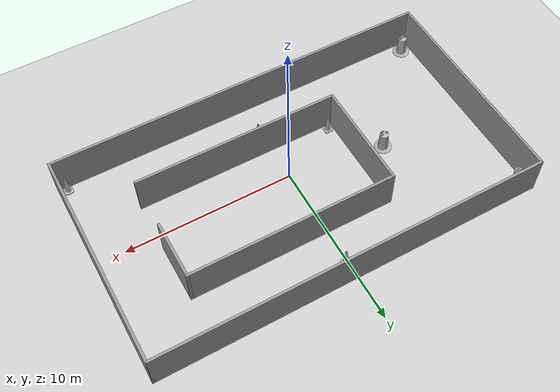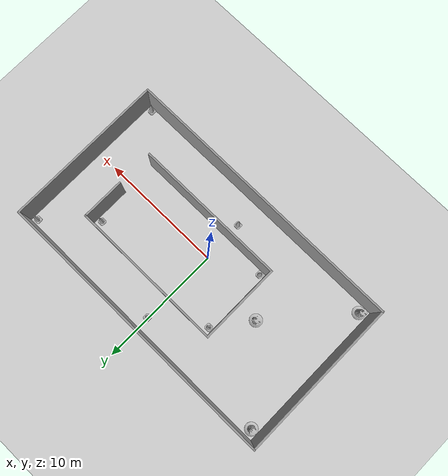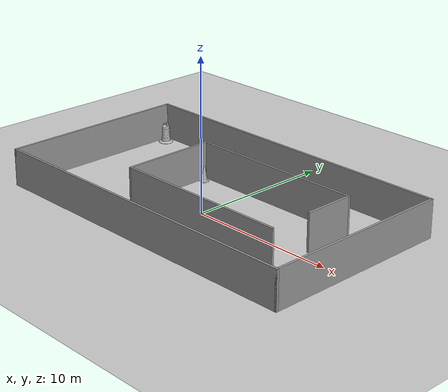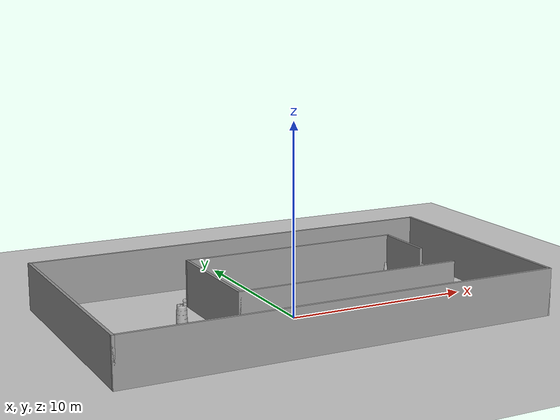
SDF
<sdf version="1.7">
 <world name="default">
  <light name="sun" type="directional">
   <pose>0 0 10 0 -0 0</pose>
   <diffuse>0.8 0.8 0.8 1</diffuse>
   <specular>0.2 0.2 0.2 1</specular>
   <attenuation>
    <range>1000</range>
    <constant>0.9</constant>
    <linear>0.01</linear>
    <quadratic>0.001</quadratic>
   </attenuation>
   <direction>-0.5 0.1 -0.9</direction>
   <spot><inner_angle>0</inner_angle><outer_angle>0</outer_angle><falloff>0</falloff></spot>
  </light>
  <model name="ground_plane">
   <static>1</static>
   <link name="link">
    <collision name="collision">
     <geometry><plane><normal>0 0 1</normal><size>100 100</size></plane></geometry>
     <surface><friction><ode><mu>100</mu><mu2>50</mu2></ode></friction></surface>
    </collision>
    <visual name="visual">
     <cast_shadows>0</cast_shadows>
     <geometry><plane><normal>0 0 1</normal><size>100 100</size></plane></geometry>
     <material>
      <script><uri>file://media/materials/scripts/gazebo.material</uri><name>Gazebo/Grey</name></script>
     </material>
    </visual>
   </link>
  </model>
  <gravity>0 0 -9.8</gravity>
  <magnetic_field>6e-06 2.3e-05 -4.2e-05</magnetic_field>
  <atmosphere type="adiabatic"/>
  <physics type="ode">
   <max_step_size>0.001</max_step_size>
   <real_time_factor>1</real_time_factor>
   <real_time_update_rate>1000</real_time_update_rate>
  </physics>
  <scene><ambient>0.4 0.4 0.4 1</ambient><background>0.7 0.7 0.7 1</background><shadows>1</shadows></scene>
  <spherical_coordinates>
   <surface_model>EARTH_WGS84</surface_model>
   <latitude_deg>0</latitude_deg>
   <longitude_deg>0</longitude_deg>
   <elevation>0</elevation>
   <heading_deg>0</heading_deg>
  </spherical_coordinates>
  <model name="box_house">
   <pose>0.104808 0.898712 0 0 0 -3.14116</pose>
   <link name="Wall_1">
    <collision name="Wall_1_Collision">
     <geometry><box><size>13 0.15 2.5</size></box></geometry>
     <pose>0 0 1.25 0 -0 0</pose>
    </collision>
    <visual name="Wall_1_Visual">
     <pose>0 0 1.25 0 -0 0</pose>
     <geometry><box><size>13 0.15 2.5</size></box></geometry>
     <material>
      <script><uri>file://media/materials/scripts/gazebo.material</uri><name>Gazebo/Grey</name></script>
      <ambient>1 1 1 1</ambient>
     </material>
     <meta><layer>0</layer></meta>
    </visual>
    <pose>-11.5447 -0 0 0 -0 -1.5708</pose>
   </link>
   <link name="Wall_12">
    <collision name="Wall_12_Collision">
     <geometry><box><size>6.5 0.15 2.5</size></box></geometry>
     <pose>0 0 1.25 0 -0 0</pose>
    </collision>
    <visual name="Wall_12_Visual">
     <pose>0 0 1.25 0 -0 0</pose>
     <geometry><box><size>6.5 0.15 2.5</size></box></geometry>
     <material>
      <script><uri>file://media/materials/scripts/gazebo.material</uri><name>Gazebo/Grey</name></script>
      <ambient>1 1 1 1</ambient>
     </material>
     <meta><layer>0</layer></meta>
    </visual>
    <pose>4.12492 -0.103088 0 0 -0 -1.5708</pose>
   </link>
   <link name="Wall_13">
    <collision name="Wall_13_Collision">
     <geometry><box><size>12.25 0.15 2.5</size></box></geometry>
     <pose>0 0 1.25 0 -0 0</pose>
    </collision>
    <visual name="Wall_13_Visual">
     <pose>0 0 1.25 0 -0 0</pose>
     <geometry><box><size>12.25 0.15 2.5</size></box></geometry>
     <material>
      <script><uri>file://media/materials/scripts/gazebo.material</uri><name>Gazebo/Grey</name></script>
      <ambient>1 1 1 1</ambient>
     </material>
     <meta><layer>0</layer></meta>
    </visual>
    <pose>-1.92508 -3.27809 0 0 -0 3.14159</pose>
   </link>
   <link name="Wall_14">
    <collision name="Wall_14_Collision">
     <geometry><box><size>3.5 0.15 2.5</size></box></geometry>
     <pose>0 0 1.25 0 -0 0</pose>
    </collision>
    <visual name="Wall_14_Visual">
     <pose>0 0 1.25 0 -0 0</pose>
     <geometry><box><size>3.5 0.15 2.5</size></box></geometry>
     <material>
      <script><uri>file://media/materials/scripts/gazebo.material</uri><name>Gazebo/Grey</name></script>
      <ambient>1 1 1 1</ambient>
     </material>
     <meta><layer>0</layer></meta>
    </visual>
    <pose>-7.97508 -1.60309 0 0 -0 1.5708</pose>
   </link>
   <link name="Wall_2">
    <collision name="Wall_2_Collision">
     <geometry><box><size>23.2394 0.15 2.5</size></box></geometry>
     <pose>0 0 1.25 0 -0 0</pose>
    </collision>
    <visual name="Wall_2_Visual">
     <pose>0 0 1.25 0 -0 0</pose>
     <geometry><box><size>23.2394 0.15 2.5</size></box></geometry>
     <material>
      <script><uri>file://media/materials/scripts/gazebo.material</uri><name>Gazebo/Grey</name></script>
      <ambient>1 1 1 1</ambient>
     </material>
     <meta><layer>0</layer></meta>
    </visual>
    <pose>-0 -6.425 0 0 -0 0</pose>
   </link>
   <link name="Wall_3">
    <collision name="Wall_3_Collision">
     <geometry><box><size>13 0.15 2.5</size></box></geometry>
     <pose>0 0 1.25 0 -0 0</pose>
    </collision>
    <visual name="Wall_3_Visual">
     <pose>0 0 1.25 0 -0 0</pose>
     <geometry><box><size>13 0.15 2.5</size></box></geometry>
     <material>
      <script><uri>file://media/materials/scripts/gazebo.material</uri><name>Gazebo/Grey</name></script>
      <ambient>1 1 1 1</ambient>
     </material>
     <meta><layer>0</layer></meta>
    </visual>
    <pose>11.5447 -0 0 0 -0 1.5708</pose>
   </link>
   <link name="Wall_6">
    <collision name="Wall_6_Collision">
     <geometry><box><size>23.2394 0.15 2.5</size></box></geometry>
     <pose>0 0 1.25 0 -0 0</pose>
    </collision>
    <visual name="Wall_6_Visual">
     <pose>0 0 1.25 0 -0 0</pose>
     <geometry><box><size>23.2394 0.15 2.5</size></box></geometry>
     <material>
      <script><uri>file://media/materials/scripts/gazebo.material</uri><name>Gazebo/Grey</name></script>
      <ambient>1 1 1 1</ambient>
     </material>
     <meta><layer>0</layer></meta>
    </visual>
    <pose>-0 6.425 0 0 -0 0</pose>
   </link>
   <link name="Wall_8">
    <collision name="Wall_8_Collision">
     <geometry><box><size>12.25 0.15 2.5</size></box></geometry>
     <pose>0 0 1.25 0 -0 0</pose>
    </collision>
    <visual name="Wall_8_Visual">
     <pose>0 0 1.25 0 -0 0</pose>
     <geometry><box><size>12.25 0.15 2.5</size></box></geometry>
     <material>
      <script><uri>file://media/materials/scripts/gazebo.material</uri><name>Gazebo/Grey</name></script>
      <ambient>1 1 1 1</ambient>
     </material>
     <meta><layer>0</layer></meta>
    </visual>
    <pose>-1.92508 3.07191 0 0 -0 0</pose>
   </link>
   <static>1</static>
  </model>
  <model name="Construction Barrel">
   <link name="link">
    <inertial>
     <pose>0 0 0.4 0 -0 0</pose>
     <mass>500</mass>
     <inertia><ixx>51.2096</ixx><iyy>51.2096</iyy><izz>25</izz><ixy>0</ixy><ixz>0</ixz><iyz>0</iyz></inertia>
    </inertial>
    <collision name="collision">
     <geometry><mesh><uri>model://construction_barrel/meshes/construction_barrel.dae</uri></mesh></geometry>
    </collision>
    <visual name="visual">
     <geometry><mesh><uri>model://construction_barrel/meshes/construction_barrel.dae</uri></mesh></geometry>
    </visual>
   </link>
   <pose>-10.7669 -4.89326 1e-06 3e-06 2e-06 -2.3e-05</pose>
  </model>
  <model name="Construction Barrel_0">
   <link name="link">
    <inertial>
     <pose>0 0 0.4 0 -0 0</pose>
     <mass>500</mass>
     <inertia><ixx>51.2096</ixx><iyy>51.2096</iyy><izz>25</izz><ixy>0</ixy><ixz>0</ixz><iyz>0</iyz></inertia>
    </inertial>
    <collision name="collision">
     <geometry><mesh><uri>model://construction_barrel/meshes/construction_barrel.dae</uri></mesh></geometry>
    </collision>
    <visual name="visual">
     <geometry><mesh><uri>model://construction_barrel/meshes/construction_barrel.dae</uri></mesh></geometry>
    </visual>
   </link>
   <pose>-10.8552 6.63446 -2e-06 -0 7e-06 -0.008127</pose>
  </model>
  <model name="Construction Cone">
   <link name="link">
    <collision name="collision">
     <geometry>
      <mesh><scale>10 10 10</scale><uri>model://construction_cone/meshes/construction_cone.dae</uri></mesh>
     </geometry>
    </collision>
    <visual name="visual">
     <geometry>
      <mesh><scale>10 10 10</scale><uri>model://construction_cone/meshes/construction_cone.dae</uri></mesh>
     </geometry>
    </visual>
    <inertial>
     <inertia><ixx>1</ixx><ixy>0</ixy><ixz>0</ixz><iyy>1</iyy><iyz>0</iyz><izz>1</izz></inertia>
     <mass>1</mass>
    </inertial>
   </link>
   <pose>11.1903 6.8929 -0 0 -0 0</pose>
  </model>
  <model name="Construction Cone_0">
   <link name="link">
    <collision name="collision">
     <geometry>
      <mesh><scale>10 10 10</scale><uri>model://construction_cone/meshes/construction_cone.dae</uri></mesh>
     </geometry>
    </collision>
    <visual name="visual">
     <geometry>
      <mesh><scale>10 10 10</scale><uri>model://construction_cone/meshes/construction_cone.dae</uri></mesh>
     </geometry>
    </visual>
    <inertial>
     <inertia><ixx>1</ixx><ixy>0</ixy><ixz>0</ixz><iyy>1</iyy><iyz>0</iyz><izz>1</izz></inertia>
     <mass>1</mass>
    </inertial>
   </link>
   <pose>11.2013 -5.19474 -0 0 -0 0.002323</pose>
  </model>
  <model name="Construction Cone_1">
   <link name="link">
    <collision name="collision">
     <geometry>
      <mesh><scale>10 10 10</scale><uri>model://construction_cone/meshes/construction_cone.dae</uri></mesh>
     </geometry>
    </collision>
    <visual name="visual">
     <geometry>
      <mesh><scale>10 10 10</scale><uri>model://construction_cone/meshes/construction_cone.dae</uri></mesh>
     </geometry>
    </visual>
    <inertial>
     <inertia><ixx>1</ixx><ixy>0</ixy><ixz>0</ixz><iyy>1</iyy><iyz>0</iyz><izz>1</izz></inertia>
     <mass>1</mass>
    </inertial>
   </link>
   <pose>-3.62488 3.62161 -0 1e-06 -0 0</pose>
  </model>
  <model name="Construction Cone_2">
   <link name="link">
    <collision name="collision">
     <geometry>
      <mesh><scale>10 10 10</scale><uri>model://construction_cone/meshes/construction_cone.dae</uri></mesh>
     </geometry>
    </collision>
    <visual name="visual">
     <geometry>
      <mesh><scale>10 10 10</scale><uri>model://construction_cone/meshes/construction_cone.dae</uri></mesh>
     </geometry>
    </visual>
    <inertial>
     <inertia><ixx>1</ixx><ixy>0</ixy><ixz>0</ixz><iyy>1</iyy><iyz>0</iyz><izz>1</izz></inertia>
     <mass>1</mass>
    </inertial>
   </link>
   <pose>7.63863 3.60207 -0 0 -0 0</pose>
  </model>
  <model name="Construction Cone_3">
   <link name="link">
    <collision name="collision">
     <geometry>
      <mesh><scale>10 10 10</scale><uri>model://construction_cone/meshes/construction_cone.dae</uri></mesh>
     </geometry>
    </collision>
    <visual name="visual">
     <geometry>
      <mesh><scale>10 10 10</scale><uri>model://construction_cone/meshes/construction_cone.dae</uri></mesh>
     </geometry>
    </visual>
    <inertial>
     <inertia><ixx>1</ixx><ixy>0</ixy><ixz>0</ixz><iyy>1</iyy><iyz>0</iyz><izz>1</izz></inertia>
     <mass>1</mass>
    </inertial>
   </link>
   <pose>-3.61009 -1.81406 -5e-06 -4e-06 1e-06 0</pose>
  </model>
  <model name="Construction Cone_4">
   <link name="link">
    <collision name="collision">
     <geometry>
      <mesh><scale>10 10 10</scale><uri>model://construction_cone/meshes/construction_cone.dae</uri></mesh>
     </geometry>
    </collision>
    <visual name="visual">
     <geometry>
      <mesh><scale>10 10 10</scale><uri>model://construction_cone/meshes/construction_cone.dae</uri></mesh>
     </geometry>
    </visual>
    <inertial>
     <inertia><ixx>1</ixx><ixy>0</ixy><ixz>0</ixz><iyy>1</iyy><iyz>0</iyz><izz>1</izz></inertia>
     <mass>1</mass>
    </inertial>
   </link>
   <pose>0.088885 6.27248 0 -0 -0 -0</pose>
  </model>
  <model name="Construction Cone_5">
   <link name="link">
    <collision name="collision">
     <geometry>
      <mesh><scale>10 10 10</scale><uri>model://construction_cone/meshes/construction_cone.dae</uri></mesh>
     </geometry>
    </collision>
    <visual name="visual">
     <geometry>
      <mesh><scale>10 10 10</scale><uri>model://construction_cone/meshes/construction_cone.dae</uri></mesh>
     </geometry>
    </visual>
    <inertial>
     <inertia><ixx>1</ixx><ixy>0</ixy><ixz>0</ixz><iyy>1</iyy><iyz>0</iyz><izz>1</izz></inertia>
     <mass>1</mass>
    </inertial>
   </link>
   <pose>0.144089 -3.38799 -6e-06 2e-06 -0 0</pose>
  </model>
  <model name="Construction Barrel_1">
   <link name="link">
    <inertial>
     <pose>0 0 0.4 0 -0 0</pose>
     <mass>500</mass>
     <inertia><ixx>51.2096</ixx><iyy>51.2096</iyy><izz>25</izz><ixy>0</ixy><ixz>0</ixz><iyz>0</iyz></inertia>
    </inertial>
    <collision name="collision">
     <geometry><mesh><uri>model://construction_barrel/meshes/construction_barrel.dae</uri></mesh></geometry>
    </collision>
    <visual name="visual">
     <geometry><mesh><uri>model://construction_barrel/meshes/construction_barrel.dae</uri></mesh></geometry>
    </visual>
   </link>
   <pose>-5.74589 0.822079 -3e-06 -6e-06 -5e-06 -3e-06</pose>
  </model>
 </world>
</sdf>
